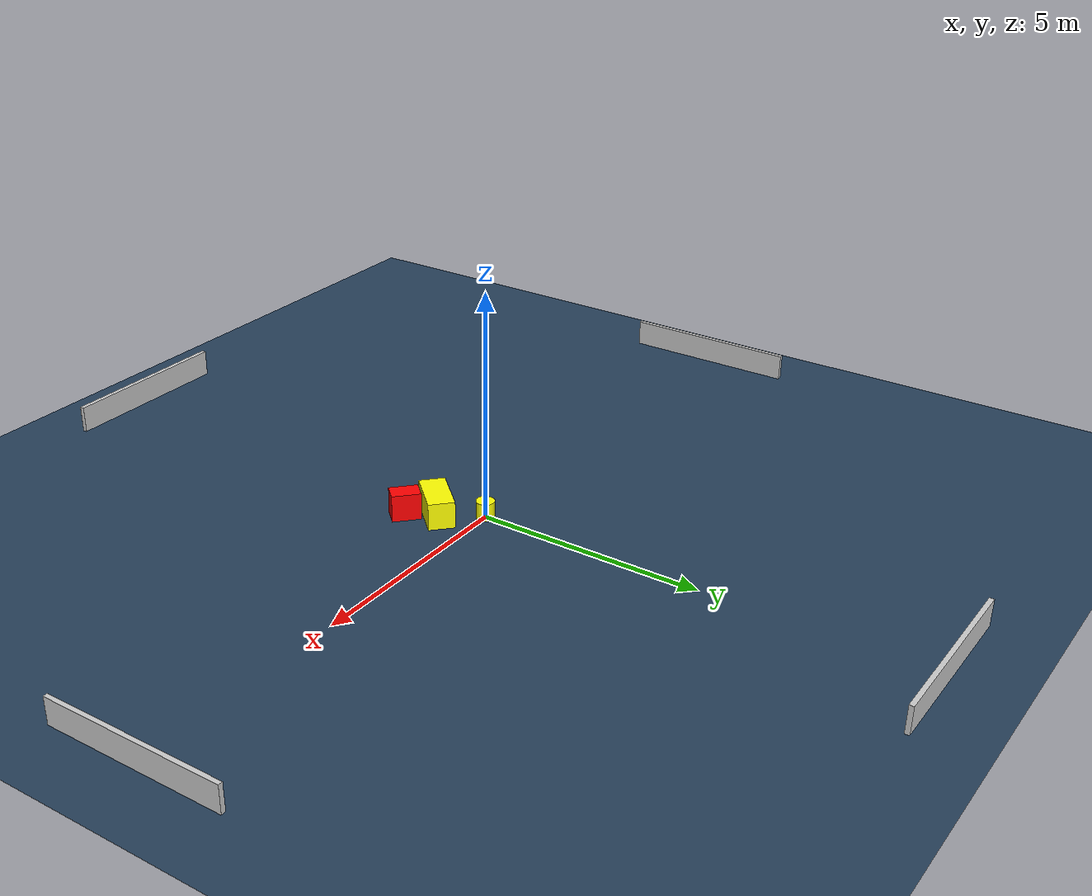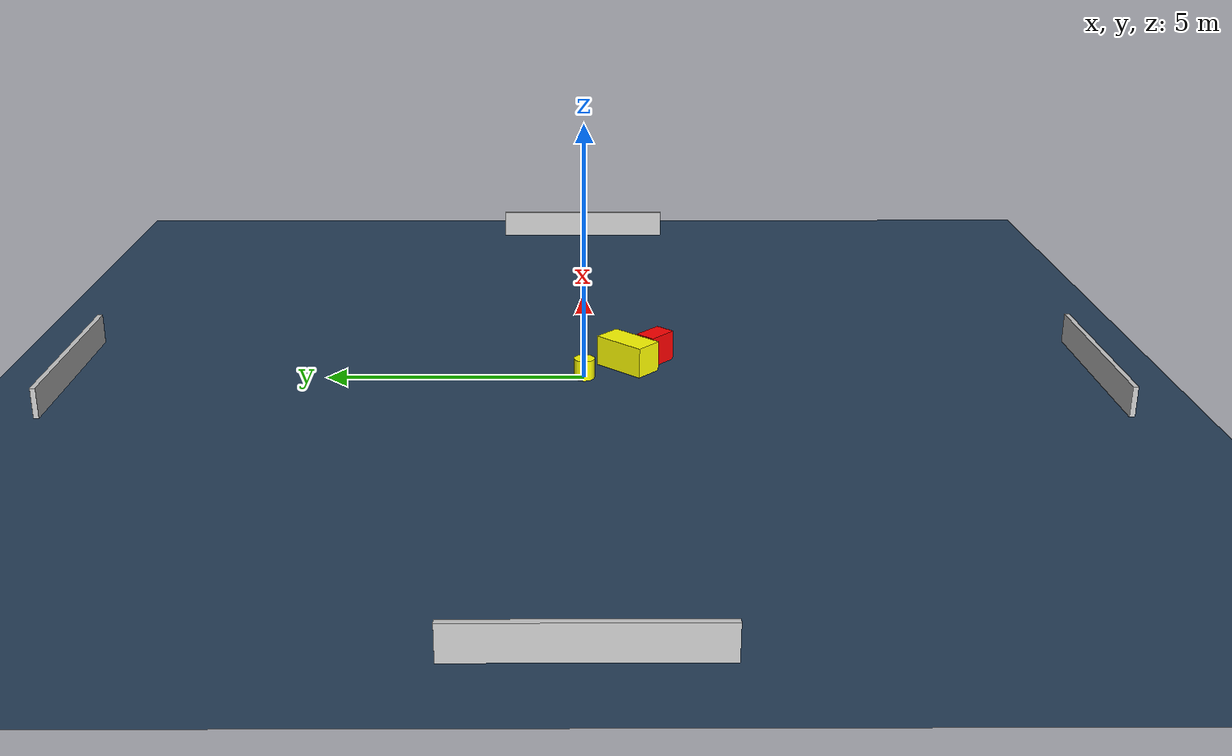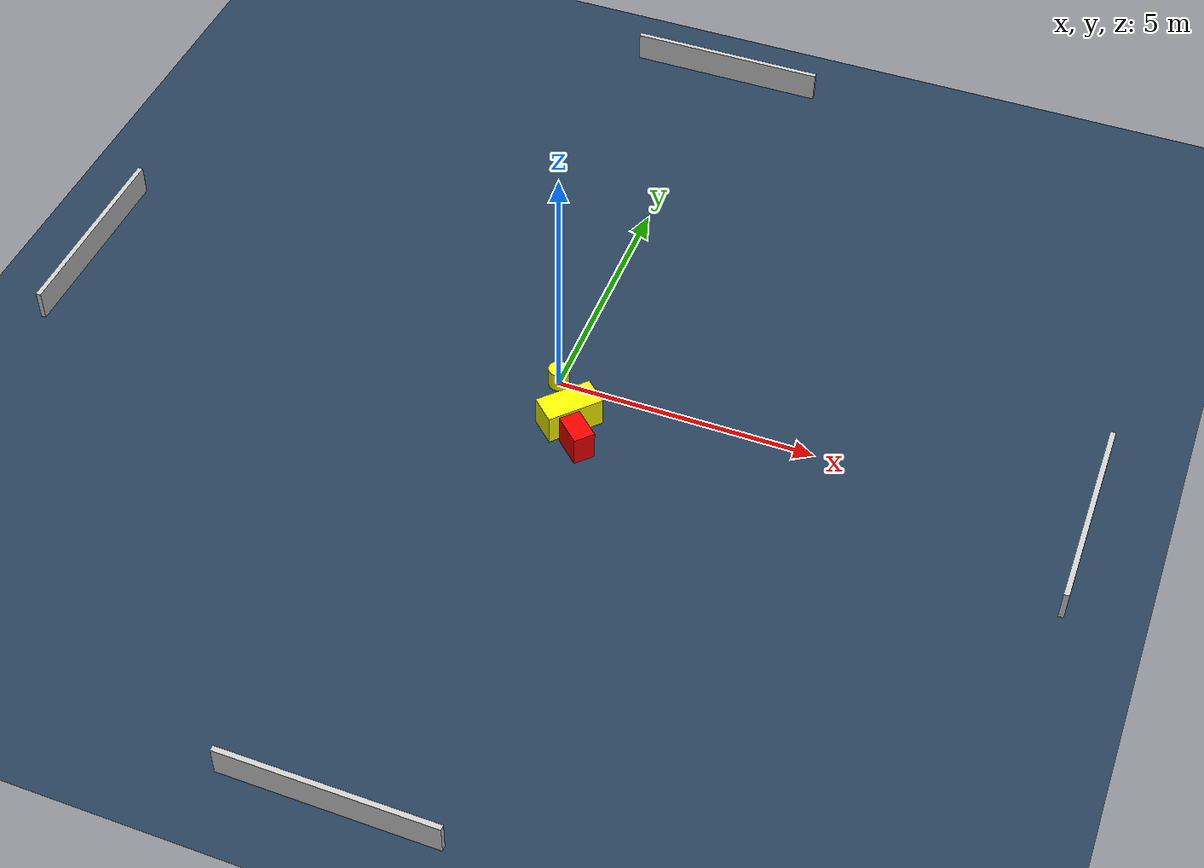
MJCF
<?xml version="1.0" ?>
<mujoco model="generated_environment">
  <option timestep="0.01" integrator="RK4" cone="elliptic"/>
  <default>
    <geom density="1"/>
  </default>
  <asset>
    <texture builtin="gradient" height="3072" name="skybox" rgb1="0.3 0.5 0.7" rgb2="0 0 0" type="skybox" width="512"/>
    <texture builtin="checker" height="300" name="groundplane" rgb1="0.2 0.3 0.4" rgb2="0.1 0.2 0.3" type="2d" width="300"/>
    <material name="groundplane" reflectance="0.2" texrepeat="5 5" texture="groundplane"/>
  </asset>
  <worldbody>
    <light dir="0 0 -1" directional="true" pos="0 0 1.5"/>
    <geom condim="3" friction="0.5 0.005 0.001" material="groundplane" name="floor" pos="0 0 0" size="0 0 0.05" type="plane"/>
    <body name="walls">
      <geom name="wall_1" condim="4" pos="-10.0 0.0 0.3" rgba="0.800000011920929 0.800000011920929 0.800000011920929 1.0" size="0.05 2.0 0.3" type="box"/>
      <geom name="wall_2" condim="4" pos="10.0 0.0 0.3" rgba="0.800000011920929 0.800000011920929 0.800000011920929 1.0" size="0.05 2.0 0.3" type="box"/>
      <geom name="wall_3" condim="4" pos="0.0 -10.0 0.3" rgba="0.800000011920929 0.800000011920929 0.800000011920929 1.0" size="2.0 0.05 0.3" type="box"/>
      <geom name="wall_4" condim="4" pos="0.0 10.0 0.3" rgba="0.800000011920929 0.800000011920929 0.800000011920929 1.0" size="2.0 0.05 0.3" type="box"/>
    </body>
    <body name="robot">
      <joint name="joint_x" type="slide" pos="0 0 0" axis="1 0 0"/>
      <joint name="joint_y" type="slide" pos="0 0 0" axis="0 1 0"/>
      <geom name="robot" type="cylinder" pos="0.0 0.0 0.2" size="0.2 0.2 0.0" mass="5.0" friction="1.0 0.005 0.0001" condim="4" rgba="1.0 1.0 0.0 1.0"/>
    </body>
    <body name="obstacle_1_movable">
      <geom name="obstacle_1_movable" condim="4" pos="0.5440767421756257 -0.8597741217694693 0.3" euler="0 0 47.0848848613429" friction="0.0 0.005 0.001" rgba="1.0 1.0 0.0 1.0" size="0.5513750050556587 0.2848561805655692 0.3" type="box" mass="0.1"/>
      <joint type="free"/>
    </body>
    <body name="obstacle_2_static">
      <geom name="obstacle_2_static" condim="4" pos="0.9070754778861624 -1.416607857912723 0.3" euler="0 0 317.0694316363943" friction="0.0 0.005 0.001" rgba="1.0 0.0 0.0 1.0" size="0.3147389083036432 0.2062949909438055 0.3" type="box"/>
    </body>
  </worldbody>
  <actuator>
    <motor name="actuator_x" joint="joint_x" gear="1" ctrlrange="-1 1"/>
    <motor name="actuator_y" joint="joint_y" gear="1" ctrlrange="-1 1"/>
  </actuator>
</mujoco>
